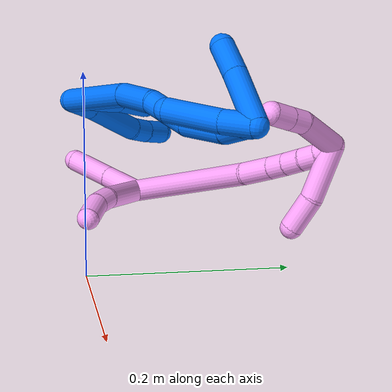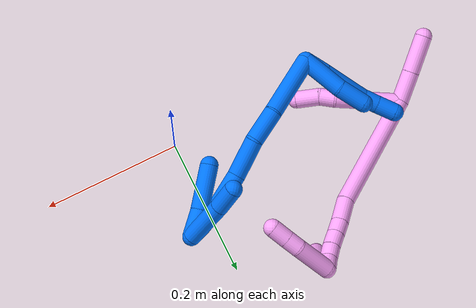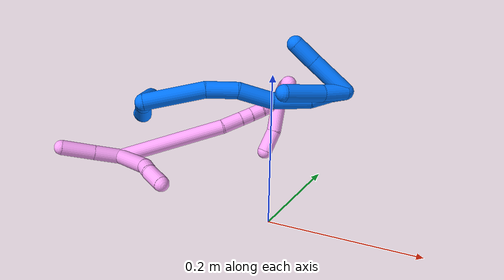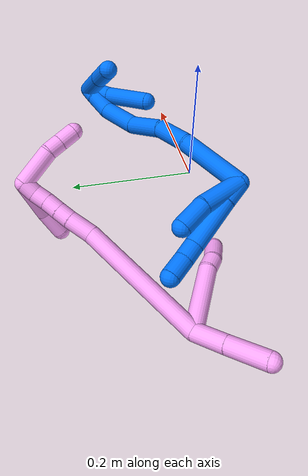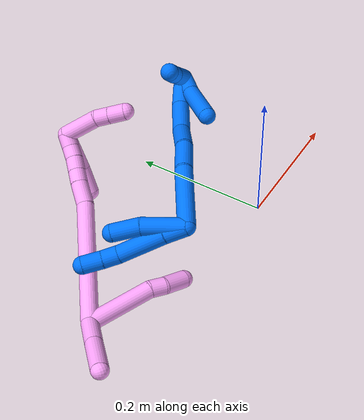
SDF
<sdf version="1.7">
 <world name="default">
  <model name="4">
   <static>0</static>
   <link name="4">
    <collision name="collision-cylinder-e_1_2_8">
     <pose>0.008652 -0.004555 -0.046017 3.04292 0.184954 2.16312</pose>
     <geometry><cylinder><radius>0.0125</radius><length>0.094089</length></cylinder></geometry>
     <surface>
      <friction><ode><mu>1.16</mu><mu2>1.16</mu2><slip1>0</slip1><slip2>0</slip2></ode></friction>
      <contact><ode><kp>1e+06</kp><kd>1</kd><max_vel>0</max_vel><min_depth>0.001</min_depth></ode></contact>
     </surface>
    </collision>
    <visual name="visual-cylinder-e_1_2_8">
     <pose>0.008652 -0.004555 -0.046017 3.04292 0.184954 2.16312</pose>
     <geometry><cylinder><radius>0.0125</radius><length>0.094089</length></cylinder></geometry>
     <material><ambient>1 0.65098 0.996078 1</ambient></material>
    </visual>
    <collision name="collision-cylinder-e_2_8_9">
     <pose>0.016382 -0.010633 -0.102828 3.00149 -0.084297 -1.0824</pose>
     <geometry><cylinder><radius>0.0125</radius><length>0.021879</length></cylinder></geometry>
     <surface>
      <friction><ode><mu>1.16</mu><mu2>1.16</mu2><slip1>0</slip1><slip2>0</slip2></ode></friction>
      <contact><ode><kp>1e+06</kp><kd>1</kd><max_vel>0</max_vel><min_depth>0.001</min_depth></ode></contact>
     </surface>
    </collision>
    <visual name="visual-cylinder-e_2_8_9">
     <pose>0.016382 -0.010633 -0.102828 3.00149 -0.084297 -1.0824</pose>
     <geometry><cylinder><radius>0.0125</radius><length>0.021879</length></cylinder></geometry>
     <material><ambient>1 0.65098 0.996078 1</ambient></material>
    </visual>
    <collision name="collision-cylinder-e_3_9_6">
     <pose>0.01352 -0.009495 -0.130316 -2.98359 -0.114328 1.25184</pose>
     <geometry><cylinder><radius>0.0125</radius><length>0.034032</length></cylinder></geometry>
     <surface>
      <friction><ode><mu>1.16</mu><mu2>1.16</mu2><slip1>0</slip1><slip2>0</slip2></ode></friction>
      <contact><ode><kp>1e+06</kp><kd>1</kd><max_vel>0</max_vel><min_depth>0.001</min_depth></ode></contact>
     </surface>
    </collision>
    <visual name="visual-cylinder-e_3_9_6">
     <pose>0.01352 -0.009495 -0.130316 -2.98359 -0.114328 1.25184</pose>
     <geometry><cylinder><radius>0.0125</radius><length>0.034032</length></cylinder></geometry>
     <material><ambient>1 0.65098 0.996078 1</ambient></material>
    </visual>
    <collision name="collision-cylinder-e_1_2_10">
     <pose>-0.005622 -0.020493 0.007887 1.20343 -0.250642 -0.172582</pose>
     <geometry><cylinder><radius>0.0125</radius><length>0.045333</length></cylinder></geometry>
     <surface>
      <friction><ode><mu>1.16</mu><mu2>1.16</mu2><slip1>0</slip1><slip2>0</slip2></ode></friction>
      <contact><ode><kp>1e+06</kp><kd>1</kd><max_vel>0</max_vel><min_depth>0.001</min_depth></ode></contact>
     </surface>
    </collision>
    <visual name="visual-cylinder-e_1_2_10">
     <pose>-0.005622 -0.020493 0.007887 1.20343 -0.250642 -0.172582</pose>
     <geometry><cylinder><radius>0.0125</radius><length>0.045333</length></cylinder></geometry>
     <material><ambient>1 0.65098 0.996078 1</ambient></material>
    </visual>
    <collision name="collision-cylinder-e_2_10_5">
     <pose>-0.017746 -0.065894 0.024963 1.21733 -0.240178 -0.167803</pose>
     <geometry><cylinder><radius>0.0125</radius><length>0.054667</length></cylinder></geometry>
     <surface>
      <friction><ode><mu>1.16</mu><mu2>1.16</mu2><slip1>0</slip1><slip2>0</slip2></ode></friction>
      <contact><ode><kp>1e+06</kp><kd>1</kd><max_vel>0</max_vel><min_depth>0.001</min_depth></ode></contact>
     </surface>
    </collision>
    <visual name="visual-cylinder-e_2_10_5">
     <pose>-0.017746 -0.065894 0.024963 1.21733 -0.240178 -0.167803</pose>
     <geometry><cylinder><radius>0.0125</radius><length>0.054667</length></cylinder></geometry>
     <material><ambient>1 0.65098 0.996078 1</ambient></material>
    </visual>
    <collision name="collision-cylinder-e_1_2_11">
     <pose>0.061017 0.056549 -0.03748 -2.15611 0.732485 -1.24059</pose>
     <geometry><cylinder><radius>0.0125</radius><length>0.18249</length></cylinder></geometry>
     <surface>
      <friction><ode><mu>1.16</mu><mu2>1.16</mu2><slip1>0</slip1><slip2>0</slip2></ode></friction>
      <contact><ode><kp>1e+06</kp><kd>1</kd><max_vel>0</max_vel><min_depth>0.001</min_depth></ode></contact>
     </surface>
    </collision>
    <visual name="visual-cylinder-e_1_2_11">
     <pose>0.061017 0.056549 -0.03748 -2.15611 0.732485 -1.24059</pose>
     <geometry><cylinder><radius>0.0125</radius><length>0.18249</length></cylinder></geometry>
     <material><ambient>1 0.65098 0.996078 1</ambient></material>
    </visual>
    <collision name="collision-cylinder-e_2_11_12">
     <pose>0.134817 0.124974 -0.07868 -1.87426 0.798764 -1.04282</pose>
     <geometry><cylinder><radius>0.0125</radius><length>0.035679</length></cylinder></geometry>
     <surface>
      <friction><ode><mu>1.16</mu><mu2>1.16</mu2><slip1>0</slip1><slip2>0</slip2></ode></friction>
      <contact><ode><kp>1e+06</kp><kd>1</kd><max_vel>0</max_vel><min_depth>0.001</min_depth></ode></contact>
     </surface>
    </collision>
    <visual name="visual-cylinder-e_2_11_12">
     <pose>0.134817 0.124974 -0.07868 -1.87426 0.798764 -1.04282</pose>
     <geometry><cylinder><radius>0.0125</radius><length>0.035679</length></cylinder></geometry>
     <material><ambient>1 0.65098 0.996078 1</ambient></material>
    </visual>
    <collision name="collision-cylinder-e_3_12_13">
     <pose>0.155029 0.143287 -0.085016 -1.9571 0.818886 -1.14571</pose>
     <geometry><cylinder><radius>0.0125</radius><length>0.020347</length></cylinder></geometry>
     <surface>
      <friction><ode><mu>1.16</mu><mu2>1.16</mu2><slip1>0</slip1><slip2>0</slip2></ode></friction>
      <contact><ode><kp>1e+06</kp><kd>1</kd><max_vel>0</max_vel><min_depth>0.001</min_depth></ode></contact>
     </surface>
    </collision>
    <visual name="visual-cylinder-e_3_12_13">
     <pose>0.155029 0.143287 -0.085016 -1.9571 0.818886 -1.14571</pose>
     <geometry><cylinder><radius>0.0125</radius><length>0.020347</length></cylinder></geometry>
     <material><ambient>1 0.65098 0.996078 1</ambient></material>
    </visual>
    <collision name="collision-cylinder-e_4_13_14">
     <pose>0.170354 0.156256 -0.090379 -1.96853 0.839368 -1.18258</pose>
     <geometry><cylinder><radius>0.0125</radius><length>0.021215</length></cylinder></geometry>
     <surface>
      <friction><ode><mu>1.16</mu><mu2>1.16</mu2><slip1>0</slip1><slip2>0</slip2></ode></friction>
      <contact><ode><kp>1e+06</kp><kd>1</kd><max_vel>0</max_vel><min_depth>0.001</min_depth></ode></contact>
     </surface>
    </collision>
    <visual name="visual-cylinder-e_4_13_14">
     <pose>0.170354 0.156256 -0.090379 -1.96853 0.839368 -1.18258</pose>
     <geometry><cylinder><radius>0.0125</radius><length>0.021215</length></cylinder></geometry>
     <material><ambient>1 0.65098 0.996078 1</ambient></material>
    </visual>
    <collision name="collision-cylinder-e_5_14_15">
     <pose>0.185811 0.169186 -0.094806 -1.82795 0.852094 -1.06403</pose>
     <geometry><cylinder><radius>0.0125</radius><length>0.020096</length></cylinder></geometry>
     <surface>
      <friction><ode><mu>1.16</mu><mu2>1.16</mu2><slip1>0</slip1><slip2>0</slip2></ode></friction>
      <contact><ode><kp>1e+06</kp><kd>1</kd><max_vel>0</max_vel><min_depth>0.001</min_depth></ode></contact>
     </surface>
    </collision>
    <visual name="visual-cylinder-e_5_14_15">
     <pose>0.185811 0.169186 -0.094806 -1.82795 0.852094 -1.06403</pose>
     <geometry><cylinder><radius>0.0125</radius><length>0.020096</length></cylinder></geometry>
     <material><ambient>1 0.65098 0.996078 1</ambient></material>
    </visual>
    <collision name="collision-cylinder-e_6_15_1">
     <pose>0.202522 0.179783 -0.097131 -1.72263 1.13612 -1.27843</pose>
     <geometry><cylinder><radius>0.0125</radius><length>0.020172</length></cylinder></geometry>
     <surface>
      <friction><ode><mu>1.16</mu><mu2>1.16</mu2><slip1>0</slip1><slip2>0</slip2></ode></friction>
      <contact><ode><kp>1e+06</kp><kd>1</kd><max_vel>0</max_vel><min_depth>0.001</min_depth></ode></contact>
     </surface>
    </collision>
    <visual name="visual-cylinder-e_6_15_1">
     <pose>0.202522 0.179783 -0.097131 -1.72263 1.13612 -1.27843</pose>
     <geometry><cylinder><radius>0.0125</radius><length>0.020172</length></cylinder></geometry>
     <material><ambient>1 0.65098 0.996078 1</ambient></material>
    </visual>
    <collision name="collision-cylinder-e_1_1_16">
     <pose>0.220974 0.166203 -0.116342 2.37794 0.347249 0.823654</pose>
     <geometry><cylinder><radius>0.0125</radius><length>0.054678</length></cylinder></geometry>
     <surface>
      <friction><ode><mu>1.16</mu><mu2>1.16</mu2><slip1>0</slip1><slip2>0</slip2></ode></friction>
      <contact><ode><kp>1e+06</kp><kd>1</kd><max_vel>0</max_vel><min_depth>0.001</min_depth></ode></contact>
     </surface>
    </collision>
    <visual name="visual-cylinder-e_1_1_16">
     <pose>0.220974 0.166203 -0.116342 2.37794 0.347249 0.823654</pose>
     <geometry><cylinder><radius>0.0125</radius><length>0.054678</length></cylinder></geometry>
     <material><ambient>1 0.65098 0.996078 1</ambient></material>
    </visual>
    <collision name="collision-cylinder-e_2_16_17">
     <pose>0.231154 0.141802 -0.142777 2.44179 0.085009 0.232051</pose>
     <geometry><cylinder><radius>0.0125</radius><length>0.020642</length></cylinder></geometry>
     <surface>
      <friction><ode><mu>1.16</mu><mu2>1.16</mu2><slip1>0</slip1><slip2>0</slip2></ode></friction>
      <contact><ode><kp>1e+06</kp><kd>1</kd><max_vel>0</max_vel><min_depth>0.001</min_depth></ode></contact>
     </surface>
    </collision>
    <visual name="visual-cylinder-e_2_16_17">
     <pose>0.231154 0.141802 -0.142777 2.44179 0.085009 0.232051</pose>
     <geometry><cylinder><radius>0.0125</radius><length>0.020642</length></cylinder></geometry>
     <material><ambient>1 0.65098 0.996078 1</ambient></material>
    </visual>
    <collision name="collision-cylinder-e_3_17_4">
     <pose>0.233123 0.127117 -0.159923 2.42631 0.088666 0.236308</pose>
     <geometry><cylinder><radius>0.0125</radius><length>0.02468</length></cylinder></geometry>
     <surface>
      <friction><ode><mu>1.16</mu><mu2>1.16</mu2><slip1>0</slip1><slip2>0</slip2></ode></friction>
      <contact><ode><kp>1e+06</kp><kd>1</kd><max_vel>0</max_vel><min_depth>0.001</min_depth></ode></contact>
     </surface>
    </collision>
    <visual name="visual-cylinder-e_3_17_4">
     <pose>0.233123 0.127117 -0.159923 2.42631 0.088666 0.236308</pose>
     <geometry><cylinder><radius>0.0125</radius><length>0.02468</length></cylinder></geometry>
     <material><ambient>1 0.65098 0.996078 1</ambient></material>
    </visual>
    <collision name="collision-cylinder-e_1_1_18">
     <pose>0.182433 0.188359 -0.105342 -2.61718 -1.28022 2.44979</pose>
     <geometry><cylinder><radius>0.0125</radius><length>0.061034</length></cylinder></geometry>
     <surface>
      <friction><ode><mu>1.16</mu><mu2>1.16</mu2><slip1>0</slip1><slip2>0</slip2></ode></friction>
      <contact><ode><kp>1e+06</kp><kd>1</kd><max_vel>0</max_vel><min_depth>0.001</min_depth></ode></contact>
     </surface>
    </collision>
    <visual name="visual-cylinder-e_1_1_18">
     <pose>0.182433 0.188359 -0.105342 -2.61718 -1.28022 2.44979</pose>
     <geometry><cylinder><radius>0.0125</radius><length>0.061034</length></cylinder></geometry>
     <material><ambient>1 0.65098 0.996078 1</ambient></material>
    </visual>
    <collision name="collision-cylinder-e_2_18_3">
     <pose>0.133907 0.191214 -0.115199 2.55446 -1.42921 -2.47101</pose>
     <geometry><cylinder><radius>0.0125</radius><length>0.038966</length></cylinder></geometry>
     <surface>
      <friction><ode><mu>1.16</mu><mu2>1.16</mu2><slip1>0</slip1><slip2>0</slip2></ode></friction>
      <contact><ode><kp>1e+06</kp><kd>1</kd><max_vel>0</max_vel><min_depth>0.001</min_depth></ode></contact>
     </surface>
    </collision>
    <visual name="visual-cylinder-e_2_18_3">
     <pose>0.133907 0.191214 -0.115199 2.55446 -1.42921 -2.47101</pose>
     <geometry><cylinder><radius>0.0125</radius><length>0.038966</length></cylinder></geometry>
     <material><ambient>1 0.65098 0.996078 1</ambient></material>
    </visual>
    <collision name="collision-sphere-3">
     <pose>0.114619 0.189691 -0.117488 0 -0 0</pose>
     <geometry><sphere><radius>0.0125</radius></sphere></geometry>
     <surface>
      <friction><ode><mu>1.16</mu><mu2>1.16</mu2><slip1>0</slip1><slip2>0</slip2></ode></friction>
      <contact><ode><kp>1e+06</kp><kd>1</kd><max_vel>0</max_vel><min_depth>0.001</min_depth></ode></contact>
     </surface>
    </collision>
    <visual name="visual-sphere-3">
     <pose>0.114619 0.189691 -0.117488 0 -0 0</pose>
     <geometry><sphere><radius>0.0125</radius></sphere></geometry>
     <material><ambient>1 0.65098 0.996078 1</ambient></material>
    </visual>
    <collision name="collision-sphere-5">
     <pose>-0.024248 -0.090801 0.034153 0 -0 0</pose>
     <geometry><sphere><radius>0.0125</radius></sphere></geometry>
     <surface>
      <friction><ode><mu>1.16</mu><mu2>1.16</mu2><slip1>0</slip1><slip2>0</slip2></ode></friction>
      <contact><ode><kp>1e+06</kp><kd>1</kd><max_vel>0</max_vel><min_depth>0.001</min_depth></ode></contact>
     </surface>
    </collision>
    <visual name="visual-sphere-5">
     <pose>-0.024248 -0.090801 0.034153 0 -0 0</pose>
     <geometry><sphere><radius>0.0125</radius></sphere></geometry>
     <material><ambient>1 0.65098 0.996078 1</ambient></material>
    </visual>
    <collision name="collision-sphere-10">
     <pose>-0.011244 -0.040986 0.015773 0 -0 0</pose>
     <geometry><sphere><radius>0.0125</radius></sphere></geometry>
     <surface>
      <friction><ode><mu>1.16</mu><mu2>1.16</mu2><slip1>0</slip1><slip2>0</slip2></ode></friction>
      <contact><ode><kp>1e+06</kp><kd>1</kd><max_vel>0</max_vel><min_depth>0.001</min_depth></ode></contact>
     </surface>
    </collision>
    <visual name="visual-sphere-10">
     <pose>-0.011244 -0.040986 0.015773 0 -0 0</pose>
     <geometry><sphere><radius>0.0125</radius></sphere></geometry>
     <material><ambient>1 0.65098 0.996078 1</ambient></material>
    </visual>
    <collision name="collision-sphere-6">
     <pose>0.011579 -0.006836 -0.147011 0 -0 0</pose>
     <geometry><sphere><radius>0.0125</radius></sphere></geometry>
     <surface>
      <friction><ode><mu>1.16</mu><mu2>1.16</mu2><slip1>0</slip1><slip2>0</slip2></ode></friction>
      <contact><ode><kp>1e+06</kp><kd>1</kd><max_vel>0</max_vel><min_depth>0.001</min_depth></ode></contact>
     </surface>
    </collision>
    <visual name="visual-sphere-6">
     <pose>0.011579 -0.006836 -0.147011 0 -0 0</pose>
     <geometry><sphere><radius>0.0125</radius></sphere></geometry>
     <material><ambient>1 0.65098 0.996078 1</ambient></material>
    </visual>
    <collision name="collision-sphere-9">
     <pose>0.015461 -0.012155 -0.113622 0 -0 0</pose>
     <geometry><sphere><radius>0.0125</radius></sphere></geometry>
     <surface>
      <friction><ode><mu>1.16</mu><mu2>1.16</mu2><slip1>0</slip1><slip2>0</slip2></ode></friction>
      <contact><ode><kp>1e+06</kp><kd>1</kd><max_vel>0</max_vel><min_depth>0.001</min_depth></ode></contact>
     </surface>
    </collision>
    <visual name="visual-sphere-9">
     <pose>0.015461 -0.012155 -0.113622 0 -0 0</pose>
     <geometry><sphere><radius>0.0125</radius></sphere></geometry>
     <material><ambient>1 0.65098 0.996078 1</ambient></material>
    </visual>
    <collision name="collision-sphere-2">
     <geometry><sphere><radius>0.0125</radius></sphere></geometry>
     <surface>
      <friction><ode><mu>1.16</mu><mu2>1.16</mu2><slip1>0</slip1><slip2>0</slip2></ode></friction>
      <contact><ode><kp>1e+06</kp><kd>1</kd><max_vel>0</max_vel><min_depth>0.001</min_depth></ode></contact>
     </surface>
    </collision>
    <visual name="visual-sphere-2">
     <geometry><sphere><radius>0.0125</radius></sphere></geometry>
     <material><ambient>1 0.65098 0.996078 1</ambient></material>
    </visual>
    <collision name="collision-sphere-8">
     <pose>0.017303 -0.009111 -0.092034 0 -0 0</pose>
     <geometry><sphere><radius>0.0125</radius></sphere></geometry>
     <surface>
      <friction><ode><mu>1.16</mu><mu2>1.16</mu2><slip1>0</slip1><slip2>0</slip2></ode></friction>
      <contact><ode><kp>1e+06</kp><kd>1</kd><max_vel>0</max_vel><min_depth>0.001</min_depth></ode></contact>
     </surface>
    </collision>
    <visual name="visual-sphere-8">
     <pose>0.017303 -0.009111 -0.092034 0 -0 0</pose>
     <geometry><sphere><radius>0.0125</radius></sphere></geometry>
     <material><ambient>1 0.65098 0.996078 1</ambient></material>
    </visual>
    <collision name="collision-sphere-11">
     <pose>0.122035 0.113098 -0.074961 0 -0 0</pose>
     <geometry><sphere><radius>0.0125</radius></sphere></geometry>
     <surface>
      <friction><ode><mu>1.16</mu><mu2>1.16</mu2><slip1>0</slip1><slip2>0</slip2></ode></friction>
      <contact><ode><kp>1e+06</kp><kd>1</kd><max_vel>0</max_vel><min_depth>0.001</min_depth></ode></contact>
     </surface>
    </collision>
    <visual name="visual-sphere-11">
     <pose>0.122035 0.113098 -0.074961 0 -0 0</pose>
     <geometry><sphere><radius>0.0125</radius></sphere></geometry>
     <material><ambient>1 0.65098 0.996078 1</ambient></material>
    </visual>
    <collision name="collision-sphere-12">
     <pose>0.147599 0.13685 -0.082398 0 -0 0</pose>
     <geometry><sphere><radius>0.0125</radius></sphere></geometry>
     <surface>
      <friction><ode><mu>1.16</mu><mu2>1.16</mu2><slip1>0</slip1><slip2>0</slip2></ode></friction>
      <contact><ode><kp>1e+06</kp><kd>1</kd><max_vel>0</max_vel><min_depth>0.001</min_depth></ode></contact>
     </surface>
    </collision>
    <visual name="visual-sphere-12">
     <pose>0.147599 0.13685 -0.082398 0 -0 0</pose>
     <geometry><sphere><radius>0.0125</radius></sphere></geometry>
     <material><ambient>1 0.65098 0.996078 1</ambient></material>
    </visual>
    <collision name="collision-sphere-13">
     <pose>0.16246 0.149724 -0.087635 0 -0 0</pose>
     <geometry><sphere><radius>0.0125</radius></sphere></geometry>
     <surface>
      <friction><ode><mu>1.16</mu><mu2>1.16</mu2><slip1>0</slip1><slip2>0</slip2></ode></friction>
      <contact><ode><kp>1e+06</kp><kd>1</kd><max_vel>0</max_vel><min_depth>0.001</min_depth></ode></contact>
     </surface>
    </collision>
    <visual name="visual-sphere-13">
     <pose>0.16246 0.149724 -0.087635 0 -0 0</pose>
     <geometry><sphere><radius>0.0125</radius></sphere></geometry>
     <material><ambient>1 0.65098 0.996078 1</ambient></material>
    </visual>
    <collision name="collision-sphere-14">
     <pose>0.178249 0.162788 -0.093123 0 -0 0</pose>
     <geometry><sphere><radius>0.0125</radius></sphere></geometry>
     <surface>
      <friction><ode><mu>1.16</mu><mu2>1.16</mu2><slip1>0</slip1><slip2>0</slip2></ode></friction>
      <contact><ode><kp>1e+06</kp><kd>1</kd><max_vel>0</max_vel><min_depth>0.001</min_depth></ode></contact>
     </surface>
    </collision>
    <visual name="visual-sphere-14">
     <pose>0.178249 0.162788 -0.093123 0 -0 0</pose>
     <geometry><sphere><radius>0.0125</radius></sphere></geometry>
     <material><ambient>1 0.65098 0.996078 1</ambient></material>
    </visual>
    <collision name="collision-sphere-15">
     <pose>0.193374 0.175584 -0.096488 0 -0 0</pose>
     <geometry><sphere><radius>0.0125</radius></sphere></geometry>
     <surface>
      <friction><ode><mu>1.16</mu><mu2>1.16</mu2><slip1>0</slip1><slip2>0</slip2></ode></friction>
      <contact><ode><kp>1e+06</kp><kd>1</kd><max_vel>0</max_vel><min_depth>0.001</min_depth></ode></contact>
     </surface>
    </collision>
    <visual name="visual-sphere-15">
     <pose>0.193374 0.175584 -0.096488 0 -0 0</pose>
     <geometry><sphere><radius>0.0125</radius></sphere></geometry>
     <material><ambient>1 0.65098 0.996078 1</ambient></material>
    </visual>
    <collision name="collision-sphere-1">
     <pose>0.21167 0.183981 -0.097773 0 -0 0</pose>
     <geometry><sphere><radius>0.0125</radius></sphere></geometry>
     <surface>
      <friction><ode><mu>1.16</mu><mu2>1.16</mu2><slip1>0</slip1><slip2>0</slip2></ode></friction>
      <contact><ode><kp>1e+06</kp><kd>1</kd><max_vel>0</max_vel><min_depth>0.001</min_depth></ode></contact>
     </surface>
    </collision>
    <visual name="visual-sphere-1">
     <pose>0.21167 0.183981 -0.097773 0 -0 0</pose>
     <geometry><sphere><radius>0.0125</radius></sphere></geometry>
     <material><ambient>1 0.65098 0.996078 1</ambient></material>
    </visual>
    <collision name="collision-sphere-18">
     <pose>0.153195 0.192737 -0.11291 0 -0 0</pose>
     <geometry><sphere><radius>0.0125</radius></sphere></geometry>
     <surface>
      <friction><ode><mu>1.16</mu><mu2>1.16</mu2><slip1>0</slip1><slip2>0</slip2></ode></friction>
      <contact><ode><kp>1e+06</kp><kd>1</kd><max_vel>0</max_vel><min_depth>0.001</min_depth></ode></contact>
     </surface>
    </collision>
    <visual name="visual-sphere-18">
     <pose>0.153195 0.192737 -0.11291 0 -0 0</pose>
     <geometry><sphere><radius>0.0125</radius></sphere></geometry>
     <material><ambient>1 0.65098 0.996078 1</ambient></material>
    </visual>
    <collision name="collision-sphere-16">
     <pose>0.230278 0.148425 -0.13491 0 -0 0</pose>
     <geometry><sphere><radius>0.0125</radius></sphere></geometry>
     <surface>
      <friction><ode><mu>1.16</mu><mu2>1.16</mu2><slip1>0</slip1><slip2>0</slip2></ode></friction>
      <contact><ode><kp>1e+06</kp><kd>1</kd><max_vel>0</max_vel><min_depth>0.001</min_depth></ode></contact>
     </surface>
    </collision>
    <visual name="visual-sphere-16">
     <pose>0.230278 0.148425 -0.13491 0 -0 0</pose>
     <geometry><sphere><radius>0.0125</radius></sphere></geometry>
     <material><ambient>1 0.65098 0.996078 1</ambient></material>
    </visual>
    <collision name="collision-sphere-17">
     <pose>0.232031 0.135178 -0.150644 0 -0 0</pose>
     <geometry><sphere><radius>0.0125</radius></sphere></geometry>
     <surface>
      <friction><ode><mu>1.16</mu><mu2>1.16</mu2><slip1>0</slip1><slip2>0</slip2></ode></friction>
      <contact><ode><kp>1e+06</kp><kd>1</kd><max_vel>0</max_vel><min_depth>0.001</min_depth></ode></contact>
     </surface>
    </collision>
    <visual name="visual-sphere-17">
     <pose>0.232031 0.135178 -0.150644 0 -0 0</pose>
     <geometry><sphere><radius>0.0125</radius></sphere></geometry>
     <material><ambient>1 0.65098 0.996078 1</ambient></material>
    </visual>
    <collision name="collision-sphere-4">
     <pose>0.234216 0.119056 -0.169202 0 -0 0</pose>
     <geometry><sphere><radius>0.0125</radius></sphere></geometry>
     <surface>
      <friction><ode><mu>1.16</mu><mu2>1.16</mu2><slip1>0</slip1><slip2>0</slip2></ode></friction>
      <contact><ode><kp>1e+06</kp><kd>1</kd><max_vel>0</max_vel><min_depth>0.001</min_depth></ode></contact>
     </surface>
    </collision>
    <visual name="visual-sphere-4">
     <pose>0.234216 0.119056 -0.169202 0 -0 0</pose>
     <geometry><sphere><radius>0.0125</radius></sphere></geometry>
     <material><ambient>1 0.65098 0.996078 1</ambient></material>
    </visual>
    <inertial>
     <pose>0.093201 0.075492 -0.0675 0 -0 0</pose>
     <mass>0.75</mass>
     <inertia>
      <ixx>-0.000163</ixx>
      <ixy>0</ixy>
      <ixz>0</ixz>
      <iyy>-3.9e-05</iyy>
      <iyz>0</iyz>
      <izz>-0.000647</izz>
     </inertia>
    </inertial>
   </link>
   <pose>-0.316971 0.086877 0.011531 -1.38407 -1.07158 0.926915</pose>
  </model>
  <model name="14">
   <static>0</static>
   <link name="14">
    <collision name="collision-cylinder-e_1_2_8">
     <pose>-0.004928 -0.013828 0.004544 1.25327 -0.326466 -0.237355</pose>
     <geometry><cylinder><radius>0.0125</radius><length>0.030734</length></cylinder></geometry>
     <surface>
      <friction><ode><mu>1.16</mu><mu2>1.16</mu2><slip1>0</slip1><slip2>0</slip2></ode></friction>
      <contact><ode><kp>1e+06</kp><kd>1</kd><max_vel>0</max_vel><min_depth>0.001</min_depth></ode></contact>
     </surface>
    </collision>
    <visual name="visual-cylinder-e_1_2_8">
     <pose>-0.004928 -0.013828 0.004544 1.25327 -0.326466 -0.237355</pose>
     <geometry><cylinder><radius>0.0125</radius><length>0.030734</length></cylinder></geometry>
     <material><ambient>0 0.462745 1 1</ambient></material>
    </visual>
    <collision name="collision-cylinder-e_2_8_9">
     <pose>-0.02357 -0.057046 0.01924 1.23823 -0.415379 -0.298091</pose>
     <geometry><cylinder><radius>0.0125</radius><length>0.067969</length></cylinder></geometry>
     <surface>
      <friction><ode><mu>1.16</mu><mu2>1.16</mu2><slip1>0</slip1><slip2>0</slip2></ode></friction>
      <contact><ode><kp>1e+06</kp><kd>1</kd><max_vel>0</max_vel><min_depth>0.001</min_depth></ode></contact>
     </surface>
    </collision>
    <visual name="visual-cylinder-e_2_8_9">
     <pose>-0.02357 -0.057046 0.01924 1.23823 -0.415379 -0.298091</pose>
     <geometry><cylinder><radius>0.0125</radius><length>0.067969</length></cylinder></geometry>
     <material><ambient>0 0.462745 1 1</ambient></material>
    </visual>
    <collision name="collision-cylinder-e_3_9_10">
     <pose>-0.039774 -0.097367 0.031891 1.346 -0.218564 -0.174481</pose>
     <geometry><cylinder><radius>0.0125</radius><length>0.022971</length></cylinder></geometry>
     <surface>
      <friction><ode><mu>1.16</mu><mu2>1.16</mu2><slip1>0</slip1><slip2>0</slip2></ode></friction>
      <contact><ode><kp>1e+06</kp><kd>1</kd><max_vel>0</max_vel><min_depth>0.001</min_depth></ode></contact>
     </surface>
    </collision>
    <visual name="visual-cylinder-e_3_9_10">
     <pose>-0.039774 -0.097367 0.031891 1.346 -0.218564 -0.174481</pose>
     <geometry><cylinder><radius>0.0125</radius><length>0.022971</length></cylinder></geometry>
     <material><ambient>0 0.462745 1 1</ambient></material>
    </visual>
    <collision name="collision-cylinder-e_4_10_6">
     <pose>-0.044266 -0.122002 0.037349 1.35817 -0.141802 -0.114523</pose>
     <geometry><cylinder><radius>0.0125</radius><length>0.028327</length></cylinder></geometry>
     <surface>
      <friction><ode><mu>1.16</mu><mu2>1.16</mu2><slip1>0</slip1><slip2>0</slip2></ode></friction>
      <contact><ode><kp>1e+06</kp><kd>1</kd><max_vel>0</max_vel><min_depth>0.001</min_depth></ode></contact>
     </surface>
    </collision>
    <visual name="visual-cylinder-e_4_10_6">
     <pose>-0.044266 -0.122002 0.037349 1.35817 -0.141802 -0.114523</pose>
     <geometry><cylinder><radius>0.0125</radius><length>0.028327</length></cylinder></geometry>
     <material><ambient>0 0.462745 1 1</ambient></material>
    </visual>
    <collision name="collision-cylinder-e_1_2_11">
     <pose>-0.000573 -0.026498 0.014301 1.0759 -0.019029 -0.011354</pose>
     <geometry><cylinder><radius>0.0125</radius><length>0.060232</length></cylinder></geometry>
     <surface>
      <friction><ode><mu>1.16</mu><mu2>1.16</mu2><slip1>0</slip1><slip2>0</slip2></ode></friction>
      <contact><ode><kp>1e+06</kp><kd>1</kd><max_vel>0</max_vel><min_depth>0.001</min_depth></ode></contact>
     </surface>
    </collision>
    <visual name="visual-cylinder-e_1_2_11">
     <pose>-0.000573 -0.026498 0.014301 1.0759 -0.019029 -0.011354</pose>
     <geometry><cylinder><radius>0.0125</radius><length>0.060232</length></cylinder></geometry>
     <material><ambient>0 0.462745 1 1</ambient></material>
    </visual>
    <collision name="collision-cylinder-e_2_11_5">
     <pose>-0.005 -0.071349 0.035211 1.22512 -0.195034 -0.137277</pose>
     <geometry><cylinder><radius>0.0125</radius><length>0.039768</length></cylinder></geometry>
     <surface>
      <friction><ode><mu>1.16</mu><mu2>1.16</mu2><slip1>0</slip1><slip2>0</slip2></ode></friction>
      <contact><ode><kp>1e+06</kp><kd>1</kd><max_vel>0</max_vel><min_depth>0.001</min_depth></ode></contact>
     </surface>
    </collision>
    <visual name="visual-cylinder-e_2_11_5">
     <pose>-0.005 -0.071349 0.035211 1.22512 -0.195034 -0.137277</pose>
     <geometry><cylinder><radius>0.0125</radius><length>0.039768</length></cylinder></geometry>
     <material><ambient>0 0.462745 1 1</ambient></material>
    </visual>
    <collision name="collision-cylinder-e_1_2_12">
     <pose>0.013036 0.015253 0.041018 -0.356022 0.289507 -0.052442</pose>
     <geometry><cylinder><radius>0.0125</radius><length>0.091325</length></cylinder></geometry>
     <surface>
      <friction><ode><mu>1.16</mu><mu2>1.16</mu2><slip1>0</slip1><slip2>0</slip2></ode></friction>
      <contact><ode><kp>1e+06</kp><kd>1</kd><max_vel>0</max_vel><min_depth>0.001</min_depth></ode></contact>
     </surface>
    </collision>
    <visual name="visual-cylinder-e_1_2_12">
     <pose>0.013036 0.015253 0.041018 -0.356022 0.289507 -0.052442</pose>
     <geometry><cylinder><radius>0.0125</radius><length>0.091325</length></cylinder></geometry>
     <material><ambient>0 0.462745 1 1</ambient></material>
    </visual>
    <collision name="collision-cylinder-e_2_12_13">
     <pose>0.027732 0.039515 0.103687 -0.394284 0.070694 -0.014126</pose>
     <geometry><cylinder><radius>0.0125</radius><length>0.047017</length></cylinder></geometry>
     <surface>
      <friction><ode><mu>1.16</mu><mu2>1.16</mu2><slip1>0</slip1><slip2>0</slip2></ode></friction>
      <contact><ode><kp>1e+06</kp><kd>1</kd><max_vel>0</max_vel><min_depth>0.001</min_depth></ode></contact>
     </surface>
    </collision>
    <visual name="visual-cylinder-e_2_12_13">
     <pose>0.027732 0.039515 0.103687 -0.394284 0.070694 -0.014126</pose>
     <geometry><cylinder><radius>0.0125</radius><length>0.047017</length></cylinder></geometry>
     <material><ambient>0 0.462745 1 1</ambient></material>
    </visual>
    <collision name="collision-cylinder-e_3_13_14">
     <pose>0.023838 0.056095 0.150738 -0.289723 -0.206588 0.030243</pose>
     <geometry><cylinder><radius>0.0125</radius><length>0.054162</length></cylinder></geometry>
     <surface>
      <friction><ode><mu>1.16</mu><mu2>1.16</mu2><slip1>0</slip1><slip2>0</slip2></ode></friction>
      <contact><ode><kp>1e+06</kp><kd>1</kd><max_vel>0</max_vel><min_depth>0.001</min_depth></ode></contact>
     </surface>
    </collision>
    <visual name="visual-cylinder-e_3_13_14">
     <pose>0.023838 0.056095 0.150738 -0.289723 -0.206588 0.030243</pose>
     <geometry><cylinder><radius>0.0125</radius><length>0.054162</length></cylinder></geometry>
     <material><ambient>0 0.462745 1 1</ambient></material>
    </visual>
    <collision name="collision-cylinder-e_4_14_15">
     <pose>0.021332 0.073428 0.201994 -0.36098 0.109877 -0.020069</pose>
     <geometry><cylinder><radius>0.0125</radius><length>0.055608</length></cylinder></geometry>
     <surface>
      <friction><ode><mu>1.16</mu><mu2>1.16</mu2><slip1>0</slip1><slip2>0</slip2></ode></friction>
      <contact><ode><kp>1e+06</kp><kd>1</kd><max_vel>0</max_vel><min_depth>0.001</min_depth></ode></contact>
     </surface>
    </collision>
    <visual name="visual-cylinder-e_4_14_15">
     <pose>0.021332 0.073428 0.201994 -0.36098 0.109877 -0.020069</pose>
     <geometry><cylinder><radius>0.0125</radius><length>0.055608</length></cylinder></geometry>
     <material><ambient>0 0.462745 1 1</ambient></material>
    </visual>
    <collision name="collision-cylinder-e_5_15_16">
     <pose>0.030619 0.089647 0.240898 -0.459532 0.404812 -0.095925</pose>
     <geometry><cylinder><radius>0.0125</radius><length>0.031679</length></cylinder></geometry>
     <surface>
      <friction><ode><mu>1.16</mu><mu2>1.16</mu2><slip1>0</slip1><slip2>0</slip2></ode></friction>
      <contact><ode><kp>1e+06</kp><kd>1</kd><max_vel>0</max_vel><min_depth>0.001</min_depth></ode></contact>
     </surface>
    </collision>
    <visual name="visual-cylinder-e_5_15_16">
     <pose>0.030619 0.089647 0.240898 -0.459532 0.404812 -0.095925</pose>
     <geometry><cylinder><radius>0.0125</radius><length>0.031679</length></cylinder></geometry>
     <material><ambient>0 0.462745 1 1</ambient></material>
    </visual>
    <collision name="collision-cylinder-e_6_16_1">
     <pose>0.039722 0.101323 0.26211 -0.568845 0.287485 -0.084579</pose>
     <geometry><cylinder><radius>0.0125</radius><length>0.020208</length></cylinder></geometry>
     <surface>
      <friction><ode><mu>1.16</mu><mu2>1.16</mu2><slip1>0</slip1><slip2>0</slip2></ode></friction>
      <contact><ode><kp>1e+06</kp><kd>1</kd><max_vel>0</max_vel><min_depth>0.001</min_depth></ode></contact>
     </surface>
    </collision>
    <visual name="visual-cylinder-e_6_16_1">
     <pose>0.039722 0.101323 0.26211 -0.568845 0.287485 -0.084579</pose>
     <geometry><cylinder><radius>0.0125</radius><length>0.020208</length></cylinder></geometry>
     <material><ambient>0 0.462745 1 1</ambient></material>
    </visual>
    <collision name="collision-cylinder-e_1_1_17">
     <pose>0.040448 0.104669 0.251885 3.04003 -0.115216 -1.69685</pose>
     <geometry><cylinder><radius>0.0125</radius><length>0.037214</length></cylinder></geometry>
     <surface>
      <friction><ode><mu>1.16</mu><mu2>1.16</mu2><slip1>0</slip1><slip2>0</slip2></ode></friction>
      <contact><ode><kp>1e+06</kp><kd>1</kd><max_vel>0</max_vel><min_depth>0.001</min_depth></ode></contact>
     </surface>
    </collision>
    <visual name="visual-cylinder-e_1_1_17">
     <pose>0.040448 0.104669 0.251885 3.04003 -0.115216 -1.69685</pose>
     <geometry><cylinder><radius>0.0125</radius><length>0.037214</length></cylinder></geometry>
     <material><ambient>0 0.462745 1 1</ambient></material>
    </visual>
    <collision name="collision-cylinder-e_2_17_4">
     <pose>0.037609 0.102271 0.202116 3.1249 -0.02231 -1.85713</pose>
     <geometry><cylinder><radius>0.0125</radius><length>0.062786</length></cylinder></geometry>
     <surface>
      <friction><ode><mu>1.16</mu><mu2>1.16</mu2><slip1>0</slip1><slip2>0</slip2></ode></friction>
      <contact><ode><kp>1e+06</kp><kd>1</kd><max_vel>0</max_vel><min_depth>0.001</min_depth></ode></contact>
     </surface>
    </collision>
    <visual name="visual-cylinder-e_2_17_4">
     <pose>0.037609 0.102271 0.202116 3.1249 -0.02231 -1.85713</pose>
     <geometry><cylinder><radius>0.0125</radius><length>0.062786</length></cylinder></geometry>
     <material><ambient>0 0.462745 1 1</ambient></material>
    </visual>
    <collision name="collision-cylinder-e_1_1_18">
     <pose>0.061563 0.091878 0.249139 2.53499 0.635543 1.62052</pose>
     <geometry><cylinder><radius>0.0125</radius><length>0.063933</length></cylinder></geometry>
     <surface>
      <friction><ode><mu>1.16</mu><mu2>1.16</mu2><slip1>0</slip1><slip2>0</slip2></ode></friction>
      <contact><ode><kp>1e+06</kp><kd>1</kd><max_vel>0</max_vel><min_depth>0.001</min_depth></ode></contact>
     </surface>
    </collision>
    <visual name="visual-cylinder-e_1_1_18">
     <pose>0.061563 0.091878 0.249139 2.53499 0.635543 1.62052</pose>
     <geometry><cylinder><radius>0.0125</radius><length>0.063933</length></cylinder></geometry>
     <material><ambient>0 0.462745 1 1</ambient></material>
    </visual>
    <collision name="collision-cylinder-e_2_18_3">
     <pose>0.091459 0.069982 0.215607 2.61357 0.6505 1.79016</pose>
     <geometry><cylinder><radius>0.0125</radius><length>0.036067</length></cylinder></geometry>
     <surface>
      <friction><ode><mu>1.16</mu><mu2>1.16</mu2><slip1>0</slip1><slip2>0</slip2></ode></friction>
      <contact><ode><kp>1e+06</kp><kd>1</kd><max_vel>0</max_vel><min_depth>0.001</min_depth></ode></contact>
     </surface>
    </collision>
    <visual name="visual-cylinder-e_2_18_3">
     <pose>0.091459 0.069982 0.215607 2.61357 0.6505 1.79016</pose>
     <geometry><cylinder><radius>0.0125</radius><length>0.036067</length></cylinder></geometry>
     <material><ambient>0 0.462745 1 1</ambient></material>
    </visual>
    <collision name="collision-sphere-3">
     <pose>0.10238 0.062752 0.203211 0 -0 0</pose>
     <geometry><sphere><radius>0.0125</radius></sphere></geometry>
     <surface>
      <friction><ode><mu>1.16</mu><mu2>1.16</mu2><slip1>0</slip1><slip2>0</slip2></ode></friction>
      <contact><ode><kp>1e+06</kp><kd>1</kd><max_vel>0</max_vel><min_depth>0.001</min_depth></ode></contact>
     </surface>
    </collision>
    <visual name="visual-sphere-3">
     <pose>0.10238 0.062752 0.203211 0 -0 0</pose>
     <geometry><sphere><radius>0.0125</radius></sphere></geometry>
     <material><ambient>0 0.462745 1 1</ambient></material>
    </visual>
    <collision name="collision-sphere-11">
     <pose>-0.001146 -0.052996 0.028602 0 -0 0</pose>
     <geometry><sphere><radius>0.0125</radius></sphere></geometry>
     <surface>
      <friction><ode><mu>1.16</mu><mu2>1.16</mu2><slip1>0</slip1><slip2>0</slip2></ode></friction>
      <contact><ode><kp>1e+06</kp><kd>1</kd><max_vel>0</max_vel><min_depth>0.001</min_depth></ode></contact>
     </surface>
    </collision>
    <visual name="visual-sphere-11">
     <pose>-0.001146 -0.052996 0.028602 0 -0 0</pose>
     <geometry><sphere><radius>0.0125</radius></sphere></geometry>
     <material><ambient>0 0.462745 1 1</ambient></material>
    </visual>
    <collision name="collision-sphere-6">
     <pose>-0.046268 -0.135708 0.040308 0 -0 0</pose>
     <geometry><sphere><radius>0.0125</radius></sphere></geometry>
     <surface>
      <friction><ode><mu>1.16</mu><mu2>1.16</mu2><slip1>0</slip1><slip2>0</slip2></ode></friction>
      <contact><ode><kp>1e+06</kp><kd>1</kd><max_vel>0</max_vel><min_depth>0.001</min_depth></ode></contact>
     </surface>
    </collision>
    <visual name="visual-sphere-6">
     <pose>-0.046268 -0.135708 0.040308 0 -0 0</pose>
     <geometry><sphere><radius>0.0125</radius></sphere></geometry>
     <material><ambient>0 0.462745 1 1</ambient></material>
    </visual>
    <collision name="collision-sphere-10">
     <pose>-0.042265 -0.108297 0.03439 0 -0 0</pose>
     <geometry><sphere><radius>0.0125</radius></sphere></geometry>
     <surface>
      <friction><ode><mu>1.16</mu><mu2>1.16</mu2><slip1>0</slip1><slip2>0</slip2></ode></friction>
      <contact><ode><kp>1e+06</kp><kd>1</kd><max_vel>0</max_vel><min_depth>0.001</min_depth></ode></contact>
     </surface>
    </collision>
    <visual name="visual-sphere-10">
     <pose>-0.042265 -0.108297 0.03439 0 -0 0</pose>
     <geometry><sphere><radius>0.0125</radius></sphere></geometry>
     <material><ambient>0 0.462745 1 1</ambient></material>
    </visual>
    <collision name="collision-sphere-9">
     <pose>-0.037284 -0.086436 0.029391 0 -0 0</pose>
     <geometry><sphere><radius>0.0125</radius></sphere></geometry>
     <surface>
      <friction><ode><mu>1.16</mu><mu2>1.16</mu2><slip1>0</slip1><slip2>0</slip2></ode></friction>
      <contact><ode><kp>1e+06</kp><kd>1</kd><max_vel>0</max_vel><min_depth>0.001</min_depth></ode></contact>
     </surface>
    </collision>
    <visual name="visual-sphere-9">
     <pose>-0.037284 -0.086436 0.029391 0 -0 0</pose>
     <geometry><sphere><radius>0.0125</radius></sphere></geometry>
     <material><ambient>0 0.462745 1 1</ambient></material>
    </visual>
    <collision name="collision-sphere-2">
     <geometry><sphere><radius>0.0125</radius></sphere></geometry>
     <surface>
      <friction><ode><mu>1.16</mu><mu2>1.16</mu2><slip1>0</slip1><slip2>0</slip2></ode></friction>
      <contact><ode><kp>1e+06</kp><kd>1</kd><max_vel>0</max_vel><min_depth>0.001</min_depth></ode></contact>
     </surface>
    </collision>
    <visual name="visual-sphere-2">
     <geometry><sphere><radius>0.0125</radius></sphere></geometry>
     <material><ambient>0 0.462745 1 1</ambient></material>
    </visual>
    <collision name="collision-sphere-8">
     <pose>-0.009856 -0.027655 0.009089 0 -0 0</pose>
     <geometry><sphere><radius>0.0125</radius></sphere></geometry>
     <surface>
      <friction><ode><mu>1.16</mu><mu2>1.16</mu2><slip1>0</slip1><slip2>0</slip2></ode></friction>
      <contact><ode><kp>1e+06</kp><kd>1</kd><max_vel>0</max_vel><min_depth>0.001</min_depth></ode></contact>
     </surface>
    </collision>
    <visual name="visual-sphere-8">
     <pose>-0.009856 -0.027655 0.009089 0 -0 0</pose>
     <geometry><sphere><radius>0.0125</radius></sphere></geometry>
     <material><ambient>0 0.462745 1 1</ambient></material>
    </visual>
    <collision name="collision-sphere-5">
     <pose>-0.008853 -0.089702 0.041821 0 -0 0</pose>
     <geometry><sphere><radius>0.0125</radius></sphere></geometry>
     <surface>
      <friction><ode><mu>1.16</mu><mu2>1.16</mu2><slip1>0</slip1><slip2>0</slip2></ode></friction>
      <contact><ode><kp>1e+06</kp><kd>1</kd><max_vel>0</max_vel><min_depth>0.001</min_depth></ode></contact>
     </surface>
    </collision>
    <visual name="visual-sphere-5">
     <pose>-0.008853 -0.089702 0.041821 0 -0 0</pose>
     <geometry><sphere><radius>0.0125</radius></sphere></geometry>
     <material><ambient>0 0.462745 1 1</ambient></material>
    </visual>
    <collision name="collision-sphere-12">
     <pose>0.026072 0.030507 0.082036 0 -0 0</pose>
     <geometry><sphere><radius>0.0125</radius></sphere></geometry>
     <surface>
      <friction><ode><mu>1.16</mu><mu2>1.16</mu2><slip1>0</slip1><slip2>0</slip2></ode></friction>
      <contact><ode><kp>1e+06</kp><kd>1</kd><max_vel>0</max_vel><min_depth>0.001</min_depth></ode></contact>
     </surface>
    </collision>
    <visual name="visual-sphere-12">
     <pose>0.026072 0.030507 0.082036 0 -0 0</pose>
     <geometry><sphere><radius>0.0125</radius></sphere></geometry>
     <material><ambient>0 0.462745 1 1</ambient></material>
    </visual>
    <collision name="collision-sphere-13">
     <pose>0.029393 0.048523 0.125337 0 -0 0</pose>
     <geometry><sphere><radius>0.0125</radius></sphere></geometry>
     <surface>
      <friction><ode><mu>1.16</mu><mu2>1.16</mu2><slip1>0</slip1><slip2>0</slip2></ode></friction>
      <contact><ode><kp>1e+06</kp><kd>1</kd><max_vel>0</max_vel><min_depth>0.001</min_depth></ode></contact>
     </surface>
    </collision>
    <visual name="visual-sphere-13">
     <pose>0.029393 0.048523 0.125337 0 -0 0</pose>
     <geometry><sphere><radius>0.0125</radius></sphere></geometry>
     <material><ambient>0 0.462745 1 1</ambient></material>
    </visual>
    <collision name="collision-sphere-14">
     <pose>0.018283 0.063667 0.176139 0 -0 0</pose>
     <geometry><sphere><radius>0.0125</radius></sphere></geometry>
     <surface>
      <friction><ode><mu>1.16</mu><mu2>1.16</mu2><slip1>0</slip1><slip2>0</slip2></ode></friction>
      <contact><ode><kp>1e+06</kp><kd>1</kd><max_vel>0</max_vel><min_depth>0.001</min_depth></ode></contact>
     </surface>
    </collision>
    <visual name="visual-sphere-14">
     <pose>0.018283 0.063667 0.176139 0 -0 0</pose>
     <geometry><sphere><radius>0.0125</radius></sphere></geometry>
     <material><ambient>0 0.462745 1 1</ambient></material>
    </visual>
    <collision name="collision-sphere-15">
     <pose>0.02438 0.083189 0.227849 0 -0 0</pose>
     <geometry><sphere><radius>0.0125</radius></sphere></geometry>
     <surface>
      <friction><ode><mu>1.16</mu><mu2>1.16</mu2><slip1>0</slip1><slip2>0</slip2></ode></friction>
      <contact><ode><kp>1e+06</kp><kd>1</kd><max_vel>0</max_vel><min_depth>0.001</min_depth></ode></contact>
     </surface>
    </collision>
    <visual name="visual-sphere-15">
     <pose>0.02438 0.083189 0.227849 0 -0 0</pose>
     <geometry><sphere><radius>0.0125</radius></sphere></geometry>
     <material><ambient>0 0.462745 1 1</ambient></material>
    </visual>
    <collision name="collision-sphere-16">
     <pose>0.036857 0.096104 0.253947 0 -0 0</pose>
     <geometry><sphere><radius>0.0125</radius></sphere></geometry>
     <surface>
      <friction><ode><mu>1.16</mu><mu2>1.16</mu2><slip1>0</slip1><slip2>0</slip2></ode></friction>
      <contact><ode><kp>1e+06</kp><kd>1</kd><max_vel>0</max_vel><min_depth>0.001</min_depth></ode></contact>
     </surface>
    </collision>
    <visual name="visual-sphere-16">
     <pose>0.036857 0.096104 0.253947 0 -0 0</pose>
     <geometry><sphere><radius>0.0125</radius></sphere></geometry>
     <material><ambient>0 0.462745 1 1</ambient></material>
    </visual>
    <collision name="collision-sphere-1">
     <pose>0.042587 0.106543 0.270274 0 -0 0</pose>
     <geometry><sphere><radius>0.0125</radius></sphere></geometry>
     <surface>
      <friction><ode><mu>1.16</mu><mu2>1.16</mu2><slip1>0</slip1><slip2>0</slip2></ode></friction>
      <contact><ode><kp>1e+06</kp><kd>1</kd><max_vel>0</max_vel><min_depth>0.001</min_depth></ode></contact>
     </surface>
    </collision>
    <visual name="visual-sphere-1">
     <pose>0.042587 0.106543 0.270274 0 -0 0</pose>
     <geometry><sphere><radius>0.0125</radius></sphere></geometry>
     <material><ambient>0 0.462745 1 1</ambient></material>
    </visual>
    <collision name="collision-sphere-18">
     <pose>0.080538 0.077212 0.228003 0 -0 0</pose>
     <geometry><sphere><radius>0.0125</radius></sphere></geometry>
     <surface>
      <friction><ode><mu>1.16</mu><mu2>1.16</mu2><slip1>0</slip1><slip2>0</slip2></ode></friction>
      <contact><ode><kp>1e+06</kp><kd>1</kd><max_vel>0</max_vel><min_depth>0.001</min_depth></ode></contact>
     </surface>
    </collision>
    <visual name="visual-sphere-18">
     <pose>0.080538 0.077212 0.228003 0 -0 0</pose>
     <geometry><sphere><radius>0.0125</radius></sphere></geometry>
     <material><ambient>0 0.462745 1 1</ambient></material>
    </visual>
    <collision name="collision-sphere-17">
     <pose>0.038309 0.102795 0.233497 0 -0 0</pose>
     <geometry><sphere><radius>0.0125</radius></sphere></geometry>
     <surface>
      <friction><ode><mu>1.16</mu><mu2>1.16</mu2><slip1>0</slip1><slip2>0</slip2></ode></friction>
      <contact><ode><kp>1e+06</kp><kd>1</kd><max_vel>0</max_vel><min_depth>0.001</min_depth></ode></contact>
     </surface>
    </collision>
    <visual name="visual-sphere-17">
     <pose>0.038309 0.102795 0.233497 0 -0 0</pose>
     <geometry><sphere><radius>0.0125</radius></sphere></geometry>
     <material><ambient>0 0.462745 1 1</ambient></material>
    </visual>
    <collision name="collision-sphere-4">
     <pose>0.036908 0.101747 0.170736 0 -0 0</pose>
     <geometry><sphere><radius>0.0125</radius></sphere></geometry>
     <surface>
      <friction><ode><mu>1.16</mu><mu2>1.16</mu2><slip1>0</slip1><slip2>0</slip2></ode></friction>
      <contact><ode><kp>1e+06</kp><kd>1</kd><max_vel>0</max_vel><min_depth>0.001</min_depth></ode></contact>
     </surface>
    </collision>
    <visual name="visual-sphere-4">
     <pose>0.036908 0.101747 0.170736 0 -0 0</pose>
     <geometry><sphere><radius>0.0125</radius></sphere></geometry>
     <material><ambient>0 0.462745 1 1</ambient></material>
    </visual>
    <inertial>
     <pose>0.018255 0.026061 0.122952 0 -0 0</pose>
     <mass>0.75</mass>
     <inertia>
      <ixx>0.000147</ixx>
      <ixy>0</ixy>
      <ixz>0</ixz>
      <iyy>0.000122</iyy>
      <iyz>0</iyz>
      <izz>2.6e-05</izz>
     </inertia>
    </inertial>
   </link>
   <pose>-0.202645 0.003785 0.14039 2.9405 -1.44755 1.12321</pose>
  </model>
 </world>
</sdf>
